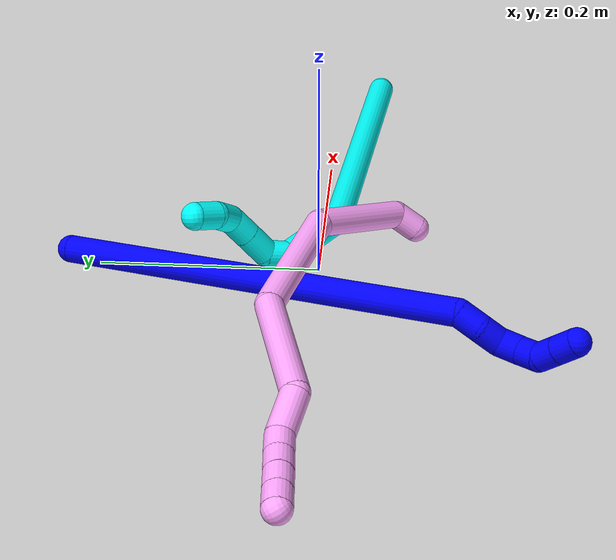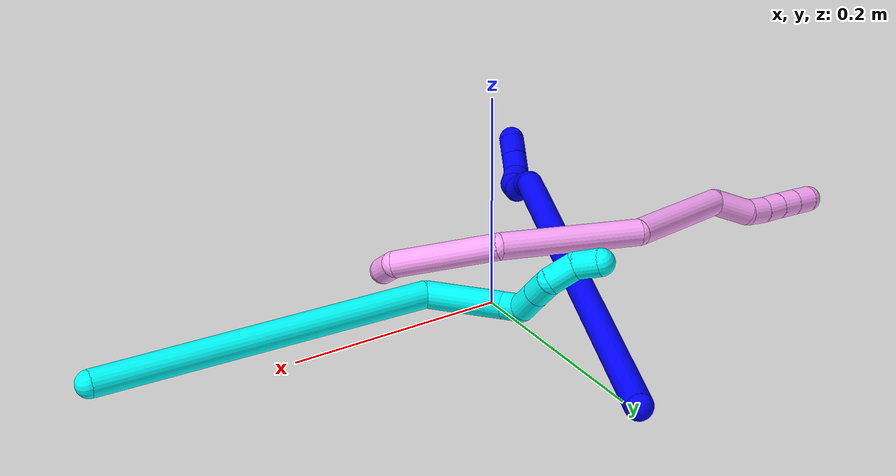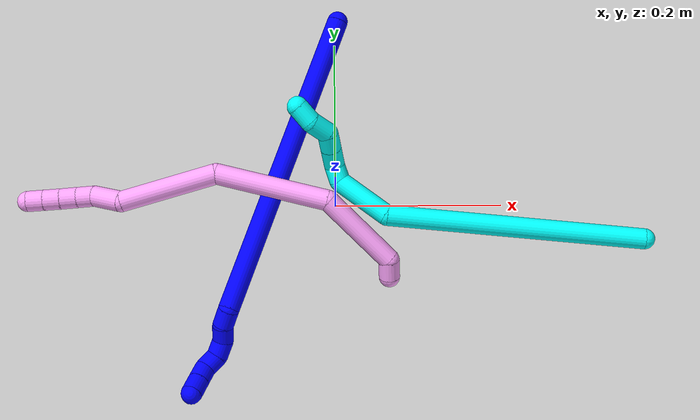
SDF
<sdf version="1.7">
 <world name="default">
  <model name="photoneo_s_sensor">
   <static>1</static>
   <pose>0 0 2 1.57079 1.57079 3.14159</pose>
   <link name="link">
    <inertial><mass>0.1</mass></inertial>
    <sensor name="sensor" type="depth">
     <update_rate>30</update_rate>
     <camera>
      <horizontal_fov>1.22</horizontal_fov>
      <image><width>1920</width><height>1200</height><format>B8G8R8</format></image>
      <clip><near>0.1</near><far>4</far></clip>
      <depth_camera><output>points</output></depth_camera>
     </camera>
     <plugin name="camera_plugin" filename="libgazebo_ros_depth_camera.so">
      <baseline>0.2</baseline>
      <alwaysOn>1</alwaysOn>
      <updateRate>0.0</updateRate>
      <cameraName>camera_ir</cameraName>
      <imageTopicName>/camera/color/image_raw</imageTopicName>
      <cameraInfoTopicName>/camera/color/camera_info</cameraInfoTopicName>
      <depthImageTopicName>/camera/depth/image_raw</depthImageTopicName>
      <depthImageCameraInfoTopicName>/camera/depth/camera_info</depthImageCameraInfoTopicName>
      <pointCloudTopicName>/camera/depth/points</pointCloudTopicName>
      <frameName>fr_optical</frameName>
      <pointCloudCutoff>0.1</pointCloudCutoff>
      <pointCloudCutoffMax>2.0</pointCloudCutoffMax>
      <distortionK1>0</distortionK1>
      <distortionK2>0</distortionK2>
      <distortionK3>0</distortionK3>
      <distortionT1>0</distortionT1>
      <distortionT2>0</distortionT2>
      <CxPrime>0</CxPrime>
      <Cx>0</Cx>
      <Cy>0</Cy>
      <focalLength>0</focalLength>
      <hackBaseline>0</hackBaseline>
     </plugin>
    </sensor>
   </link>
  </model>
  <model name="bin">
   <static>1</static>
   <link name="bottom">
    <collision name="collision-bottom">
     <pose>0 0 -0.01 0 -0 0</pose>
     <geometry><box><size>0.8 0.6 0.02</size></box></geometry>
     <surface>
      <friction><ode><mu>100</mu><mu2>100</mu2></ode></friction>
      <contact><collide_bitmask>65535</collide_bitmask></contact>
     </surface>
    </collision>
   </link>
   <link name="west_wall">
    <collision name="collision-west_wall">
     <pose>-0.41 0 0.1 0 -0 0</pose>
     <geometry><box><size>0.02 0.6 0.2</size></box></geometry>
     <surface>
      <friction><ode><mu>100</mu><mu2>100</mu2></ode></friction>
      <contact><collide_bitmask>65535</collide_bitmask></contact>
     </surface>
    </collision>
   </link>
   <link name="east_wall">
    <collision name="collision-east_wall">
     <pose>0.41 0 0.1 0 -0 0</pose>
     <geometry><box><size>0.02 0.6 0.2</size></box></geometry>
     <surface>
      <friction><ode><mu>100</mu><mu2>100</mu2></ode></friction>
      <contact><collide_bitmask>65535</collide_bitmask></contact>
     </surface>
    </collision>
   </link>
   <link name="south_wall">
    <collision name="collision-south_wall">
     <pose>0 -0.31 0.1 0 -0 0</pose>
     <geometry><box><size>0.8 0.02 0.2</size></box></geometry>
     <surface>
      <friction><ode><mu>100</mu><mu2>100</mu2></ode></friction>
      <contact><collide_bitmask>65535</collide_bitmask></contact>
     </surface>
    </collision>
   </link>
   <link name="north_wall">
    <collision name="collision-north_wall">
     <pose>0 0.31 0.1 0 -0 0</pose>
     <geometry><box><size>0.8 0.02 0.2</size></box></geometry>
     <surface>
      <friction><ode><mu>100</mu><mu2>100</mu2></ode></friction>
      <contact><collide_bitmask>65535</collide_bitmask></contact>
     </surface>
    </collision>
   </link>
  </model>
  <model name="1">
   <static>0</static>
   <link name="1">
    <collision name="collision-cylinder-e_1_1_4">
     <pose>-0.063604 -0.177215 0.011354 1.50682 -0.343937 -0.322988</pose>
     <geometry><cylinder><radius>0.0125</radius><length>0.37725</length></cylinder></geometry>
     <surface>
      <friction><ode><mu>1.16</mu><mu2>1.16</mu2><slip1>0</slip1><slip2>0</slip2></ode></friction>
      <contact><ode><kp>1e+06</kp><kd>1</kd><max_vel>0</max_vel><min_depth>0.001</min_depth></ode></contact>
     </surface>
    </collision>
    <visual name="visual-cylinder-e_1_1_4">
     <pose>-0.063604 -0.177215 0.011354 1.50682 -0.343937 -0.322988</pose>
     <geometry><cylinder><radius>0.0125</radius><length>0.37725</length></cylinder></geometry>
     <material><ambient>0 0 1 1</ambient></material>
    </visual>
    <collision name="collision-cylinder-e_2_4_5">
     <pose>-0.13124 -0.363389 0.017772 2.07433 -0.375602 -0.622423</pose>
     <geometry><cylinder><radius>0.0125</radius><length>0.021989</length></cylinder></geometry>
     <surface>
      <friction><ode><mu>1.16</mu><mu2>1.16</mu2><slip1>0</slip1><slip2>0</slip2></ode></friction>
      <contact><ode><kp>1e+06</kp><kd>1</kd><max_vel>0</max_vel><min_depth>0.001</min_depth></ode></contact>
     </surface>
    </collision>
    <visual name="visual-cylinder-e_2_4_5">
     <pose>-0.13124 -0.363389 0.017772 2.07433 -0.375602 -0.622423</pose>
     <geometry><cylinder><radius>0.0125</radius><length>0.021989</length></cylinder></geometry>
     <material><ambient>0 0 1 1</ambient></material>
    </visual>
    <collision name="collision-cylinder-e_3_5_6">
     <pose>-0.136119 -0.380384 0.006443 2.24277 -0.082175 -0.170057</pose>
     <geometry><cylinder><radius>0.0125</radius><length>0.020608</length></cylinder></geometry>
     <surface>
      <friction><ode><mu>1.16</mu><mu2>1.16</mu2><slip1>0</slip1><slip2>0</slip2></ode></friction>
      <contact><ode><kp>1e+06</kp><kd>1</kd><max_vel>0</max_vel><min_depth>0.001</min_depth></ode></contact>
     </surface>
    </collision>
    <visual name="visual-cylinder-e_3_5_6">
     <pose>-0.136119 -0.380384 0.006443 2.24277 -0.082175 -0.170057</pose>
     <geometry><cylinder><radius>0.0125</radius><length>0.020608</length></cylinder></geometry>
     <material><ambient>0 0 1 1</ambient></material>
    </visual>
    <collision name="collision-cylinder-e_4_6_7">
     <pose>-0.140664 -0.397574 -0.001815 1.77184 -0.377007 -0.458911</pose>
     <geometry><cylinder><radius>0.0125</radius><length>0.020095</length></cylinder></geometry>
     <surface>
      <friction><ode><mu>1.16</mu><mu2>1.16</mu2><slip1>0</slip1><slip2>0</slip2></ode></friction>
      <contact><ode><kp>1e+06</kp><kd>1</kd><max_vel>0</max_vel><min_depth>0.001</min_depth></ode></contact>
     </surface>
    </collision>
    <visual name="visual-cylinder-e_4_6_7">
     <pose>-0.140664 -0.397574 -0.001815 1.77184 -0.377007 -0.458911</pose>
     <geometry><cylinder><radius>0.0125</radius><length>0.020095</length></cylinder></geometry>
     <material><ambient>0 0 1 1</ambient></material>
    </visual>
    <collision name="collision-cylinder-e_5_7_8">
     <pose>-0.151119 -0.413937 -0.002061 1.3499 -0.740662 -0.602538</pose>
     <geometry><cylinder><radius>0.0125</radius><length>0.020025</length></cylinder></geometry>
     <surface>
      <friction><ode><mu>1.16</mu><mu2>1.16</mu2><slip1>0</slip1><slip2>0</slip2></ode></friction>
      <contact><ode><kp>1e+06</kp><kd>1</kd><max_vel>0</max_vel><min_depth>0.001</min_depth></ode></contact>
     </surface>
    </collision>
    <visual name="visual-cylinder-e_5_7_8">
     <pose>-0.151119 -0.413937 -0.002061 1.3499 -0.740662 -0.602538</pose>
     <geometry><cylinder><radius>0.0125</radius><length>0.020025</length></cylinder></geometry>
     <material><ambient>0 0 1 1</ambient></material>
    </visual>
    <collision name="collision-cylinder-e_6_8_9">
     <pose>-0.160692 -0.42861 0.005598 0.890351 -0.285431 -0.136903</pose>
     <geometry><cylinder><radius>0.0125</radius><length>0.020012</length></cylinder></geometry>
     <surface>
      <friction><ode><mu>1.16</mu><mu2>1.16</mu2><slip1>0</slip1><slip2>0</slip2></ode></friction>
      <contact><ode><kp>1e+06</kp><kd>1</kd><max_vel>0</max_vel><min_depth>0.001</min_depth></ode></contact>
     </surface>
    </collision>
    <visual name="visual-cylinder-e_6_8_9">
     <pose>-0.160692 -0.42861 0.005598 0.890351 -0.285431 -0.136903</pose>
     <geometry><cylinder><radius>0.0125</radius><length>0.020012</length></cylinder></geometry>
     <material><ambient>0 0 1 1</ambient></material>
    </visual>
    <collision name="collision-cylinder-e_7_9_2">
     <pose>-0.166262 -0.443554 0.017694 0.89033 -0.278479 -0.133531</pose>
     <geometry><cylinder><radius>0.0125</radius><length>0.020021</length></cylinder></geometry>
     <surface>
      <friction><ode><mu>1.16</mu><mu2>1.16</mu2><slip1>0</slip1><slip2>0</slip2></ode></friction>
      <contact><ode><kp>1e+06</kp><kd>1</kd><max_vel>0</max_vel><min_depth>0.001</min_depth></ode></contact>
     </surface>
    </collision>
    <visual name="visual-cylinder-e_7_9_2">
     <pose>-0.166262 -0.443554 0.017694 0.89033 -0.278479 -0.133531</pose>
     <geometry><cylinder><radius>0.0125</radius><length>0.020021</length></cylinder></geometry>
     <material><ambient>0 0 1 1</ambient></material>
    </visual>
    <collision name="collision-sphere-2">
     <pose>-0.169013 -0.451035 0.02375 0 -0 0</pose>
     <geometry><sphere><radius>0.0125</radius></sphere></geometry>
     <surface>
      <friction><ode><mu>1.16</mu><mu2>1.16</mu2><slip1>0</slip1><slip2>0</slip2></ode></friction>
      <contact><ode><kp>1e+06</kp><kd>1</kd><max_vel>0</max_vel><min_depth>0.001</min_depth></ode></contact>
     </surface>
    </collision>
    <visual name="visual-sphere-2">
     <pose>-0.169013 -0.451035 0.02375 0 -0 0</pose>
     <geometry><sphere><radius>0.0125</radius></sphere></geometry>
     <material><ambient>0 0 1 1</ambient></material>
    </visual>
    <collision name="collision-sphere-9">
     <pose>-0.16351 -0.436073 0.011639 0 -0 0</pose>
     <geometry><sphere><radius>0.0125</radius></sphere></geometry>
     <surface>
      <friction><ode><mu>1.16</mu><mu2>1.16</mu2><slip1>0</slip1><slip2>0</slip2></ode></friction>
      <contact><ode><kp>1e+06</kp><kd>1</kd><max_vel>0</max_vel><min_depth>0.001</min_depth></ode></contact>
     </surface>
    </collision>
    <visual name="visual-sphere-9">
     <pose>-0.16351 -0.436073 0.011639 0 -0 0</pose>
     <geometry><sphere><radius>0.0125</radius></sphere></geometry>
     <material><ambient>0 0 1 1</ambient></material>
    </visual>
    <collision name="collision-sphere-4">
     <pose>-0.127207 -0.35443 0.022707 0 -0 0</pose>
     <geometry><sphere><radius>0.0125</radius></sphere></geometry>
     <surface>
      <friction><ode><mu>1.16</mu><mu2>1.16</mu2><slip1>0</slip1><slip2>0</slip2></ode></friction>
      <contact><ode><kp>1e+06</kp><kd>1</kd><max_vel>0</max_vel><min_depth>0.001</min_depth></ode></contact>
     </surface>
    </collision>
    <visual name="visual-sphere-4">
     <pose>-0.127207 -0.35443 0.022707 0 -0 0</pose>
     <geometry><sphere><radius>0.0125</radius></sphere></geometry>
     <material><ambient>0 0 1 1</ambient></material>
    </visual>
    <collision name="collision-sphere-1">
     <geometry><sphere><radius>0.0125</radius></sphere></geometry>
     <surface>
      <friction><ode><mu>1.16</mu><mu2>1.16</mu2><slip1>0</slip1><slip2>0</slip2></ode></friction>
      <contact><ode><kp>1e+06</kp><kd>1</kd><max_vel>0</max_vel><min_depth>0.001</min_depth></ode></contact>
     </surface>
    </collision>
    <visual name="visual-sphere-1">
     <geometry><sphere><radius>0.0125</radius></sphere></geometry>
     <material><ambient>0 0 1 1</ambient></material>
    </visual>
    <collision name="collision-sphere-8">
     <pose>-0.157875 -0.421147 -0.000442 0 -0 0</pose>
     <geometry><sphere><radius>0.0125</radius></sphere></geometry>
     <surface>
      <friction><ode><mu>1.16</mu><mu2>1.16</mu2><slip1>0</slip1><slip2>0</slip2></ode></friction>
      <contact><ode><kp>1e+06</kp><kd>1</kd><max_vel>0</max_vel><min_depth>0.001</min_depth></ode></contact>
     </surface>
    </collision>
    <visual name="visual-sphere-8">
     <pose>-0.157875 -0.421147 -0.000442 0 -0 0</pose>
     <geometry><sphere><radius>0.0125</radius></sphere></geometry>
     <material><ambient>0 0 1 1</ambient></material>
    </visual>
    <collision name="collision-sphere-5">
     <pose>-0.135274 -0.372347 0.012836 0 -0 0</pose>
     <geometry><sphere><radius>0.0125</radius></sphere></geometry>
     <surface>
      <friction><ode><mu>1.16</mu><mu2>1.16</mu2><slip1>0</slip1><slip2>0</slip2></ode></friction>
      <contact><ode><kp>1e+06</kp><kd>1</kd><max_vel>0</max_vel><min_depth>0.001</min_depth></ode></contact>
     </surface>
    </collision>
    <visual name="visual-sphere-5">
     <pose>-0.135274 -0.372347 0.012836 0 -0 0</pose>
     <geometry><sphere><radius>0.0125</radius></sphere></geometry>
     <material><ambient>0 0 1 1</ambient></material>
    </visual>
    <collision name="collision-sphere-6">
     <pose>-0.136965 -0.38842 5.1e-05 0 -0 0</pose>
     <geometry><sphere><radius>0.0125</radius></sphere></geometry>
     <surface>
      <friction><ode><mu>1.16</mu><mu2>1.16</mu2><slip1>0</slip1><slip2>0</slip2></ode></friction>
      <contact><ode><kp>1e+06</kp><kd>1</kd><max_vel>0</max_vel><min_depth>0.001</min_depth></ode></contact>
     </surface>
    </collision>
    <visual name="visual-sphere-6">
     <pose>-0.136965 -0.38842 5.1e-05 0 -0 0</pose>
     <geometry><sphere><radius>0.0125</radius></sphere></geometry>
     <material><ambient>0 0 1 1</ambient></material>
    </visual>
    <collision name="collision-sphere-7">
     <pose>-0.144363 -0.406728 -0.00368 0 -0 0</pose>
     <geometry><sphere><radius>0.0125</radius></sphere></geometry>
     <surface>
      <friction><ode><mu>1.16</mu><mu2>1.16</mu2><slip1>0</slip1><slip2>0</slip2></ode></friction>
      <contact><ode><kp>1e+06</kp><kd>1</kd><max_vel>0</max_vel><min_depth>0.001</min_depth></ode></contact>
     </surface>
    </collision>
    <visual name="visual-sphere-7">
     <pose>-0.144363 -0.406728 -0.00368 0 -0 0</pose>
     <geometry><sphere><radius>0.0125</radius></sphere></geometry>
     <material><ambient>0 0 1 1</ambient></material>
    </visual>
    <inertial>
     <pose>-0.084165 -0.23284 0.01039 0 -0 0</pose>
     <mass>0.5</mass>
     <inertia>
      <ixx>0.002658</ixx>
      <ixy>0</ixy>
      <ixz>0</ixz>
      <iyy>-0.000626</iyy>
      <iyz>0</iyz>
      <izz>0.005743</izz>
     </inertia>
    </inertial>
   </link>
   <pose>0.004148 0.227844 0.011486 -0.033946 -0.06999 0.000722</pose>
  </model>
  <model name="3">
   <static>0</static>
   <link name="3">
    <collision name="collision-cylinder-e_1_1_4">
     <pose>-0.145979 -0.026583 -0.042657 2.58431 -1.2392 -2.37874</pose>
     <geometry><cylinder><radius>0.0125</radius><length>0.308779</length></cylinder></geometry>
     <surface>
      <friction><ode><mu>1.16</mu><mu2>1.16</mu2><slip1>0</slip1><slip2>0</slip2></ode></friction>
      <contact><ode><kp>1e+06</kp><kd>1</kd><max_vel>0</max_vel><min_depth>0.001</min_depth></ode></contact>
     </surface>
    </collision>
    <visual name="visual-cylinder-e_1_1_4">
     <pose>-0.145979 -0.026583 -0.042657 2.58431 -1.2392 -2.37874</pose>
     <geometry><cylinder><radius>0.0125</radius><length>0.308779</length></cylinder></geometry>
     <material><ambient>0.003922 1 0.996078 1</ambient></material>
    </visual>
    <collision name="collision-cylinder-e_2_4_5">
     <pose>-0.322774 -0.039385 -0.095449 -2.20491 -1.06407 1.72175</pose>
     <geometry><cylinder><radius>0.0125</radius><length>0.070491</length></cylinder></geometry>
     <surface>
      <friction><ode><mu>1.16</mu><mu2>1.16</mu2><slip1>0</slip1><slip2>0</slip2></ode></friction>
      <contact><ode><kp>1e+06</kp><kd>1</kd><max_vel>0</max_vel><min_depth>0.001</min_depth></ode></contact>
     </surface>
    </collision>
    <visual name="visual-cylinder-e_2_4_5">
     <pose>-0.322774 -0.039385 -0.095449 -2.20491 -1.06407 1.72175</pose>
     <geometry><cylinder><radius>0.0125</radius><length>0.070491</length></cylinder></geometry>
     <material><ambient>0.003922 1 0.996078 1</ambient></material>
    </visual>
    <collision name="collision-cylinder-e_3_5_6">
     <pose>-0.360005 -0.017879 -0.103551 -1.31365 -0.67647 0.529683</pose>
     <geometry><cylinder><radius>0.0125</radius><length>0.02049</length></cylinder></geometry>
     <surface>
      <friction><ode><mu>1.16</mu><mu2>1.16</mu2><slip1>0</slip1><slip2>0</slip2></ode></friction>
      <contact><ode><kp>1e+06</kp><kd>1</kd><max_vel>0</max_vel><min_depth>0.001</min_depth></ode></contact>
     </surface>
    </collision>
    <visual name="visual-cylinder-e_3_5_6">
     <pose>-0.360005 -0.017879 -0.103551 -1.31365 -0.67647 0.529683</pose>
     <geometry><cylinder><radius>0.0125</radius><length>0.02049</length></cylinder></geometry>
     <material><ambient>0.003922 1 0.996078 1</ambient></material>
    </visual>
    <collision name="collision-cylinder-e_4_6_7">
     <pose>-0.373763 -0.004726 -0.091274 -0.487103 -0.564692 0.14392</pose>
     <geometry><cylinder><radius>0.0125</radius><length>0.02745</length></cylinder></geometry>
     <surface>
      <friction><ode><mu>1.16</mu><mu2>1.16</mu2><slip1>0</slip1><slip2>0</slip2></ode></friction>
      <contact><ode><kp>1e+06</kp><kd>1</kd><max_vel>0</max_vel><min_depth>0.001</min_depth></ode></contact>
     </surface>
    </collision>
    <visual name="visual-cylinder-e_4_6_7">
     <pose>-0.373763 -0.004726 -0.091274 -0.487103 -0.564692 0.14392</pose>
     <geometry><cylinder><radius>0.0125</radius><length>0.02745</length></cylinder></geometry>
     <material><ambient>0.003922 1 0.996078 1</ambient></material>
    </visual>
    <collision name="collision-cylinder-e_5_7_8">
     <pose>-0.387314 0.005401 -0.072503 -0.503904 -0.567521 0.149863</pose>
     <geometry><cylinder><radius>0.0125</radius><length>0.023091</length></cylinder></geometry>
     <surface>
      <friction><ode><mu>1.16</mu><mu2>1.16</mu2><slip1>0</slip1><slip2>0</slip2></ode></friction>
      <contact><ode><kp>1e+06</kp><kd>1</kd><max_vel>0</max_vel><min_depth>0.001</min_depth></ode></contact>
     </surface>
    </collision>
    <visual name="visual-cylinder-e_5_7_8">
     <pose>-0.387314 0.005401 -0.072503 -0.503904 -0.567521 0.149863</pose>
     <geometry><cylinder><radius>0.0125</radius><length>0.023091</length></cylinder></geometry>
     <material><ambient>0.003922 1 0.996078 1</ambient></material>
    </visual>
    <collision name="collision-cylinder-e_6_8_9">
     <pose>-0.405906 0.011002 -0.059776 -0.211076 -1.23687 0.150467</pose>
     <geometry><cylinder><radius>0.0125</radius><length>0.02622</length></cylinder></geometry>
     <surface>
      <friction><ode><mu>1.16</mu><mu2>1.16</mu2><slip1>0</slip1><slip2>0</slip2></ode></friction>
      <contact><ode><kp>1e+06</kp><kd>1</kd><max_vel>0</max_vel><min_depth>0.001</min_depth></ode></contact>
     </surface>
    </collision>
    <visual name="visual-cylinder-e_6_8_9">
     <pose>-0.405906 0.011002 -0.059776 -0.211076 -1.23687 0.150467</pose>
     <geometry><cylinder><radius>0.0125</radius><length>0.02622</length></cylinder></geometry>
     <material><ambient>0.003922 1 0.996078 1</ambient></material>
    </visual>
    <collision name="collision-cylinder-e_7_9_2">
     <pose>-0.428608 0.017262 -0.053937 -1.27414 -1.07316 0.829256</pose>
     <geometry><cylinder><radius>0.0125</radius><length>0.02348</length></cylinder></geometry>
     <surface>
      <friction><ode><mu>1.16</mu><mu2>1.16</mu2><slip1>0</slip1><slip2>0</slip2></ode></friction>
      <contact><ode><kp>1e+06</kp><kd>1</kd><max_vel>0</max_vel><min_depth>0.001</min_depth></ode></contact>
     </surface>
    </collision>
    <visual name="visual-cylinder-e_7_9_2">
     <pose>-0.428608 0.017262 -0.053937 -1.27414 -1.07316 0.829256</pose>
     <geometry><cylinder><radius>0.0125</radius><length>0.02348</length></cylinder></geometry>
     <material><ambient>0.003922 1 0.996078 1</ambient></material>
    </visual>
    <collision name="collision-sphere-2">
     <pose>-0.438924 0.022621 -0.052299 0 -0 0</pose>
     <geometry><sphere><radius>0.0125</radius></sphere></geometry>
     <surface>
      <friction><ode><mu>1.16</mu><mu2>1.16</mu2><slip1>0</slip1><slip2>0</slip2></ode></friction>
      <contact><ode><kp>1e+06</kp><kd>1</kd><max_vel>0</max_vel><min_depth>0.001</min_depth></ode></contact>
     </surface>
    </collision>
    <visual name="visual-sphere-2">
     <pose>-0.438924 0.022621 -0.052299 0 -0 0</pose>
     <geometry><sphere><radius>0.0125</radius></sphere></geometry>
     <material><ambient>0.003922 1 0.996078 1</ambient></material>
    </visual>
    <collision name="collision-sphere-9">
     <pose>-0.418292 0.011903 -0.055575 0 -0 0</pose>
     <geometry><sphere><radius>0.0125</radius></sphere></geometry>
     <surface>
      <friction><ode><mu>1.16</mu><mu2>1.16</mu2><slip1>0</slip1><slip2>0</slip2></ode></friction>
      <contact><ode><kp>1e+06</kp><kd>1</kd><max_vel>0</max_vel><min_depth>0.001</min_depth></ode></contact>
     </surface>
    </collision>
    <visual name="visual-sphere-9">
     <pose>-0.418292 0.011903 -0.055575 0 -0 0</pose>
     <geometry><sphere><radius>0.0125</radius></sphere></geometry>
     <material><ambient>0.003922 1 0.996078 1</ambient></material>
    </visual>
    <collision name="collision-sphere-4">
     <pose>-0.291958 -0.053165 -0.085315 0 -0 0</pose>
     <geometry><sphere><radius>0.0125</radius></sphere></geometry>
     <surface>
      <friction><ode><mu>1.16</mu><mu2>1.16</mu2><slip1>0</slip1><slip2>0</slip2></ode></friction>
      <contact><ode><kp>1e+06</kp><kd>1</kd><max_vel>0</max_vel><min_depth>0.001</min_depth></ode></contact>
     </surface>
    </collision>
    <visual name="visual-sphere-4">
     <pose>-0.291958 -0.053165 -0.085315 0 -0 0</pose>
     <geometry><sphere><radius>0.0125</radius></sphere></geometry>
     <material><ambient>0.003922 1 0.996078 1</ambient></material>
    </visual>
    <collision name="collision-sphere-1">
     <geometry><sphere><radius>0.0125</radius></sphere></geometry>
     <surface>
      <friction><ode><mu>1.16</mu><mu2>1.16</mu2><slip1>0</slip1><slip2>0</slip2></ode></friction>
      <contact><ode><kp>1e+06</kp><kd>1</kd><max_vel>0</max_vel><min_depth>0.001</min_depth></ode></contact>
     </surface>
    </collision>
    <visual name="visual-sphere-1">
     <geometry><sphere><radius>0.0125</radius></sphere></geometry>
     <material><ambient>0.003922 1 0.996078 1</ambient></material>
    </visual>
    <collision name="collision-sphere-8">
     <pose>-0.393521 0.010102 -0.063978 0 -0 0</pose>
     <geometry><sphere><radius>0.0125</radius></sphere></geometry>
     <surface>
      <friction><ode><mu>1.16</mu><mu2>1.16</mu2><slip1>0</slip1><slip2>0</slip2></ode></friction>
      <contact><ode><kp>1e+06</kp><kd>1</kd><max_vel>0</max_vel><min_depth>0.001</min_depth></ode></contact>
     </surface>
    </collision>
    <visual name="visual-sphere-8">
     <pose>-0.393521 0.010102 -0.063978 0 -0 0</pose>
     <geometry><sphere><radius>0.0125</radius></sphere></geometry>
     <material><ambient>0.003922 1 0.996078 1</ambient></material>
    </visual>
    <collision name="collision-sphere-5">
     <pose>-0.353591 -0.025605 -0.105583 0 -0 0</pose>
     <geometry><sphere><radius>0.0125</radius></sphere></geometry>
     <surface>
      <friction><ode><mu>1.16</mu><mu2>1.16</mu2><slip1>0</slip1><slip2>0</slip2></ode></friction>
      <contact><ode><kp>1e+06</kp><kd>1</kd><max_vel>0</max_vel><min_depth>0.001</min_depth></ode></contact>
     </surface>
    </collision>
    <visual name="visual-sphere-5">
     <pose>-0.353591 -0.025605 -0.105583 0 -0 0</pose>
     <geometry><sphere><radius>0.0125</radius></sphere></geometry>
     <material><ambient>0.003922 1 0.996078 1</ambient></material>
    </visual>
    <collision name="collision-sphere-6">
     <pose>-0.366419 -0.010153 -0.10152 0 -0 0</pose>
     <geometry><sphere><radius>0.0125</radius></sphere></geometry>
     <surface>
      <friction><ode><mu>1.16</mu><mu2>1.16</mu2><slip1>0</slip1><slip2>0</slip2></ode></friction>
      <contact><ode><kp>1e+06</kp><kd>1</kd><max_vel>0</max_vel><min_depth>0.001</min_depth></ode></contact>
     </surface>
    </collision>
    <visual name="visual-sphere-6">
     <pose>-0.366419 -0.010153 -0.10152 0 -0 0</pose>
     <geometry><sphere><radius>0.0125</radius></sphere></geometry>
     <material><ambient>0.003922 1 0.996078 1</ambient></material>
    </visual>
    <collision name="collision-sphere-7">
     <pose>-0.381108 0.000701 -0.081029 0 -0 0</pose>
     <geometry><sphere><radius>0.0125</radius></sphere></geometry>
     <surface>
      <friction><ode><mu>1.16</mu><mu2>1.16</mu2><slip1>0</slip1><slip2>0</slip2></ode></friction>
      <contact><ode><kp>1e+06</kp><kd>1</kd><max_vel>0</max_vel><min_depth>0.001</min_depth></ode></contact>
     </surface>
    </collision>
    <visual name="visual-sphere-7">
     <pose>-0.381108 0.000701 -0.081029 0 -0 0</pose>
     <geometry><sphere><radius>0.0125</radius></sphere></geometry>
     <material><ambient>0.003922 1 0.996078 1</ambient></material>
    </visual>
    <inertial>
     <pose>-0.230228 -0.021324 -0.05807 0 -0 0</pose>
     <mass>0.5</mass>
     <inertia>
      <ixx>-0.001148</ixx>
      <ixy>0</ixy>
      <ixz>0</ixz>
      <iyy>0.001863</iyy>
      <iyz>0</iyz>
      <izz>0.00277</izz>
     </inertia>
    </inertial>
   </link>
   <pose>0.368591 -0.04342 0.012256 -0.201568 0.271004 -0.321106</pose>
  </model>
  <model name="4">
   <static>0</static>
   <link name="4">
    <collision name="collision-cylinder-e_1_1_4">
     <pose>0.002291 0.010819 -0.004676 -1.9788 0.191964 -0.290938</pose>
     <geometry><cylinder><radius>0.0125</radius><length>0.024014</length></cylinder></geometry>
     <surface>
      <friction><ode><mu>1.16</mu><mu2>1.16</mu2><slip1>0</slip1><slip2>0</slip2></ode></friction>
      <contact><ode><kp>1e+06</kp><kd>1</kd><max_vel>0</max_vel><min_depth>0.001</min_depth></ode></contact>
     </surface>
    </collision>
    <visual name="visual-cylinder-e_1_1_4">
     <pose>0.002291 0.010819 -0.004676 -1.9788 0.191964 -0.290938</pose>
     <geometry><cylinder><radius>0.0125</radius><length>0.024014</length></cylinder></geometry>
     <material><ambient>1 0.65098 0.996078 1</ambient></material>
    </visual>
    <collision name="collision-cylinder-e_2_4_5">
     <pose>-0.0207 0.054277 -0.038685 -2.30287 -0.522672 1.08074</pose>
     <geometry><cylinder><radius>0.0125</radius><length>0.10129</length></cylinder></geometry>
     <surface>
      <friction><ode><mu>1.16</mu><mu2>1.16</mu2><slip1>0</slip1><slip2>0</slip2></ode></friction>
      <contact><ode><kp>1e+06</kp><kd>1</kd><max_vel>0</max_vel><min_depth>0.001</min_depth></ode></contact>
     </surface>
    </collision>
    <visual name="visual-cylinder-e_2_4_5">
     <pose>-0.0207 0.054277 -0.038685 -2.30287 -0.522672 1.08074</pose>
     <geometry><cylinder><radius>0.0125</radius><length>0.10129</length></cylinder></geometry>
     <material><ambient>1 0.65098 0.996078 1</ambient></material>
    </visual>
    <collision name="collision-cylinder-e_3_5_6">
     <pose>-0.104957 0.101682 -0.098017 -2.68424 -1.05503 2.38143</pose>
     <geometry><cylinder><radius>0.0125</radius><length>0.135589</length></cylinder></geometry>
     <surface>
      <friction><ode><mu>1.16</mu><mu2>1.16</mu2><slip1>0</slip1><slip2>0</slip2></ode></friction>
      <contact><ode><kp>1e+06</kp><kd>1</kd><max_vel>0</max_vel><min_depth>0.001</min_depth></ode></contact>
     </surface>
    </collision>
    <visual name="visual-cylinder-e_3_5_6">
     <pose>-0.104957 0.101682 -0.098017 -2.68424 -1.05503 2.38143</pose>
     <geometry><cylinder><radius>0.0125</radius><length>0.135589</length></cylinder></geometry>
     <material><ambient>1 0.65098 0.996078 1</ambient></material>
    </visual>
    <collision name="collision-cylinder-e_4_6_7">
     <pose>-0.222423 0.113241 -0.129726 2.06054 -1.50878 -2.005</pose>
     <geometry><cylinder><radius>0.0125</radius><length>0.117206</length></cylinder></geometry>
     <surface>
      <friction><ode><mu>1.16</mu><mu2>1.16</mu2><slip1>0</slip1><slip2>0</slip2></ode></friction>
      <contact><ode><kp>1e+06</kp><kd>1</kd><max_vel>0</max_vel><min_depth>0.001</min_depth></ode></contact>
     </surface>
    </collision>
    <visual name="visual-cylinder-e_4_6_7">
     <pose>-0.222423 0.113241 -0.129726 2.06054 -1.50878 -2.005</pose>
     <geometry><cylinder><radius>0.0125</radius><length>0.117206</length></cylinder></geometry>
     <material><ambient>1 0.65098 0.996078 1</ambient></material>
    </visual>
    <collision name="collision-cylinder-e_5_7_8">
     <pose>-0.296689 0.107677 -0.143067 2.9415 -0.925778 -2.74459</pose>
     <geometry><cylinder><radius>0.0125</radius><length>0.039486</length></cylinder></geometry>
     <surface>
      <friction><ode><mu>1.16</mu><mu2>1.16</mu2><slip1>0</slip1><slip2>0</slip2></ode></friction>
      <contact><ode><kp>1e+06</kp><kd>1</kd><max_vel>0</max_vel><min_depth>0.001</min_depth></ode></contact>
     </surface>
    </collision>
    <visual name="visual-cylinder-e_5_7_8">
     <pose>-0.296689 0.107677 -0.143067 2.9415 -0.925778 -2.74459</pose>
     <geometry><cylinder><radius>0.0125</radius><length>0.039486</length></cylinder></geometry>
     <material><ambient>1 0.65098 0.996078 1</ambient></material>
    </visual>
    <collision name="collision-cylinder-e_6_8_9">
     <pose>-0.322554 0.10524 -0.157266 3.11142 -1.32165 -3.10278</pose>
     <geometry><cylinder><radius>0.0125</radius><length>0.020821</length></cylinder></geometry>
     <surface>
      <friction><ode><mu>1.16</mu><mu2>1.16</mu2><slip1>0</slip1><slip2>0</slip2></ode></friction>
      <contact><ode><kp>1e+06</kp><kd>1</kd><max_vel>0</max_vel><min_depth>0.001</min_depth></ode></contact>
     </surface>
    </collision>
    <visual name="visual-cylinder-e_6_8_9">
     <pose>-0.322554 0.10524 -0.157266 3.11142 -1.32165 -3.10278</pose>
     <geometry><cylinder><radius>0.0125</radius><length>0.020821</length></cylinder></geometry>
     <material><ambient>1 0.65098 0.996078 1</ambient></material>
    </visual>
    <collision name="collision-cylinder-e_7_9_10">
     <pose>-0.342821 0.10579 -0.161733 -2.82298 -1.37655 2.75574</pose>
     <geometry><cylinder><radius>0.0125</radius><length>0.020745</length></cylinder></geometry>
     <surface>
      <friction><ode><mu>1.16</mu><mu2>1.16</mu2><slip1>0</slip1><slip2>0</slip2></ode></friction>
      <contact><ode><kp>1e+06</kp><kd>1</kd><max_vel>0</max_vel><min_depth>0.001</min_depth></ode></contact>
     </surface>
    </collision>
    <visual name="visual-cylinder-e_7_9_10">
     <pose>-0.342821 0.10579 -0.161733 -2.82298 -1.37655 2.75574</pose>
     <geometry><cylinder><radius>0.0125</radius><length>0.020745</length></cylinder></geometry>
     <material><ambient>1 0.65098 0.996078 1</ambient></material>
    </visual>
    <collision name="collision-cylinder-e_8_10_11">
     <pose>-0.362904 0.106949 -0.165766 -2.89722 -1.35256 2.83791</pose>
     <geometry><cylinder><radius>0.0125</radius><length>0.020293</length></cylinder></geometry>
     <surface>
      <friction><ode><mu>1.16</mu><mu2>1.16</mu2><slip1>0</slip1><slip2>0</slip2></ode></friction>
      <contact><ode><kp>1e+06</kp><kd>1</kd><max_vel>0</max_vel><min_depth>0.001</min_depth></ode></contact>
     </surface>
    </collision>
    <visual name="visual-cylinder-e_8_10_11">
     <pose>-0.362904 0.106949 -0.165766 -2.89722 -1.35256 2.83791</pose>
     <geometry><cylinder><radius>0.0125</radius><length>0.020293</length></cylinder></geometry>
     <material><ambient>1 0.65098 0.996078 1</ambient></material>
    </visual>
    <collision name="collision-cylinder-e_9_11_2">
     <pose>-0.382846 0.108018 -0.170054 -2.89704 -1.35284 2.83779</pose>
     <geometry><cylinder><radius>0.0125</radius><length>0.020558</length></cylinder></geometry>
     <surface>
      <friction><ode><mu>1.16</mu><mu2>1.16</mu2><slip1>0</slip1><slip2>0</slip2></ode></friction>
      <contact><ode><kp>1e+06</kp><kd>1</kd><max_vel>0</max_vel><min_depth>0.001</min_depth></ode></contact>
     </surface>
    </collision>
    <visual name="visual-cylinder-e_9_11_2">
     <pose>-0.382846 0.108018 -0.170054 -2.89704 -1.35284 2.83779</pose>
     <geometry><cylinder><radius>0.0125</radius><length>0.020558</length></cylinder></geometry>
     <material><ambient>1 0.65098 0.996078 1</ambient></material>
    </visual>
    <collision name="collision-sphere-2">
     <pose>-0.392881 0.108556 -0.17221 0 -0 0</pose>
     <geometry><sphere><radius>0.0125</radius></sphere></geometry>
     <surface>
      <friction><ode><mu>1.16</mu><mu2>1.16</mu2><slip1>0</slip1><slip2>0</slip2></ode></friction>
      <contact><ode><kp>1e+06</kp><kd>1</kd><max_vel>0</max_vel><min_depth>0.001</min_depth></ode></contact>
     </surface>
    </collision>
    <visual name="visual-sphere-2">
     <pose>-0.392881 0.108556 -0.17221 0 -0 0</pose>
     <geometry><sphere><radius>0.0125</radius></sphere></geometry>
     <material><ambient>1 0.65098 0.996078 1</ambient></material>
    </visual>
    <collision name="collision-sphere-11">
     <pose>-0.37281 0.10748 -0.167897 0 -0 0</pose>
     <geometry><sphere><radius>0.0125</radius></sphere></geometry>
     <surface>
      <friction><ode><mu>1.16</mu><mu2>1.16</mu2><slip1>0</slip1><slip2>0</slip2></ode></friction>
      <contact><ode><kp>1e+06</kp><kd>1</kd><max_vel>0</max_vel><min_depth>0.001</min_depth></ode></contact>
     </surface>
    </collision>
    <visual name="visual-sphere-11">
     <pose>-0.37281 0.10748 -0.167897 0 -0 0</pose>
     <geometry><sphere><radius>0.0125</radius></sphere></geometry>
     <material><ambient>1 0.65098 0.996078 1</ambient></material>
    </visual>
    <collision name="collision-sphere-10">
     <pose>-0.352998 0.106417 -0.163634 0 -0 0</pose>
     <geometry><sphere><radius>0.0125</radius></sphere></geometry>
     <surface>
      <friction><ode><mu>1.16</mu><mu2>1.16</mu2><slip1>0</slip1><slip2>0</slip2></ode></friction>
      <contact><ode><kp>1e+06</kp><kd>1</kd><max_vel>0</max_vel><min_depth>0.001</min_depth></ode></contact>
     </surface>
    </collision>
    <visual name="visual-sphere-10">
     <pose>-0.352998 0.106417 -0.163634 0 -0 0</pose>
     <geometry><sphere><radius>0.0125</radius></sphere></geometry>
     <material><ambient>1 0.65098 0.996078 1</ambient></material>
    </visual>
    <collision name="collision-sphere-9">
     <pose>-0.332643 0.105163 -0.159831 0 -0 0</pose>
     <geometry><sphere><radius>0.0125</radius></sphere></geometry>
     <surface>
      <friction><ode><mu>1.16</mu><mu2>1.16</mu2><slip1>0</slip1><slip2>0</slip2></ode></friction>
      <contact><ode><kp>1e+06</kp><kd>1</kd><max_vel>0</max_vel><min_depth>0.001</min_depth></ode></contact>
     </surface>
    </collision>
    <visual name="visual-sphere-9">
     <pose>-0.332643 0.105163 -0.159831 0 -0 0</pose>
     <geometry><sphere><radius>0.0125</radius></sphere></geometry>
     <material><ambient>1 0.65098 0.996078 1</ambient></material>
    </visual>
    <collision name="collision-sphere-4">
     <pose>0.004581 0.021638 -0.009353 0 -0 0</pose>
     <geometry><sphere><radius>0.0125</radius></sphere></geometry>
     <surface>
      <friction><ode><mu>1.16</mu><mu2>1.16</mu2><slip1>0</slip1><slip2>0</slip2></ode></friction>
      <contact><ode><kp>1e+06</kp><kd>1</kd><max_vel>0</max_vel><min_depth>0.001</min_depth></ode></contact>
     </surface>
    </collision>
    <visual name="visual-sphere-4">
     <pose>0.004581 0.021638 -0.009353 0 -0 0</pose>
     <geometry><sphere><radius>0.0125</radius></sphere></geometry>
     <material><ambient>1 0.65098 0.996078 1</ambient></material>
    </visual>
    <collision name="collision-sphere-1">
     <geometry><sphere><radius>0.0125</radius></sphere></geometry>
     <surface>
      <friction><ode><mu>1.16</mu><mu2>1.16</mu2><slip1>0</slip1><slip2>0</slip2></ode></friction>
      <contact><ode><kp>1e+06</kp><kd>1</kd><max_vel>0</max_vel><min_depth>0.001</min_depth></ode></contact>
     </surface>
    </collision>
    <visual name="visual-sphere-1">
     <geometry><sphere><radius>0.0125</radius></sphere></geometry>
     <material><ambient>1 0.65098 0.996078 1</ambient></material>
    </visual>
    <collision name="collision-sphere-8">
     <pose>-0.312466 0.105318 -0.1547 0 -0 0</pose>
     <geometry><sphere><radius>0.0125</radius></sphere></geometry>
     <surface>
      <friction><ode><mu>1.16</mu><mu2>1.16</mu2><slip1>0</slip1><slip2>0</slip2></ode></friction>
      <contact><ode><kp>1e+06</kp><kd>1</kd><max_vel>0</max_vel><min_depth>0.001</min_depth></ode></contact>
     </surface>
    </collision>
    <visual name="visual-sphere-8">
     <pose>-0.312466 0.105318 -0.1547 0 -0 0</pose>
     <geometry><sphere><radius>0.0125</radius></sphere></geometry>
     <material><ambient>1 0.65098 0.996078 1</ambient></material>
    </visual>
    <collision name="collision-sphere-5">
     <pose>-0.045982 0.086917 -0.068018 0 -0 0</pose>
     <geometry><sphere><radius>0.0125</radius></sphere></geometry>
     <surface>
      <friction><ode><mu>1.16</mu><mu2>1.16</mu2><slip1>0</slip1><slip2>0</slip2></ode></friction>
      <contact><ode><kp>1e+06</kp><kd>1</kd><max_vel>0</max_vel><min_depth>0.001</min_depth></ode></contact>
     </surface>
    </collision>
    <visual name="visual-sphere-5">
     <pose>-0.045982 0.086917 -0.068018 0 -0 0</pose>
     <geometry><sphere><radius>0.0125</radius></sphere></geometry>
     <material><ambient>1 0.65098 0.996078 1</ambient></material>
    </visual>
    <collision name="collision-sphere-6">
     <pose>-0.163933 0.116446 -0.128017 0 -0 0</pose>
     <geometry><sphere><radius>0.0125</radius></sphere></geometry>
     <surface>
      <friction><ode><mu>1.16</mu><mu2>1.16</mu2><slip1>0</slip1><slip2>0</slip2></ode></friction>
      <contact><ode><kp>1e+06</kp><kd>1</kd><max_vel>0</max_vel><min_depth>0.001</min_depth></ode></contact>
     </surface>
    </collision>
    <visual name="visual-sphere-6">
     <pose>-0.163933 0.116446 -0.128017 0 -0 0</pose>
     <geometry><sphere><radius>0.0125</radius></sphere></geometry>
     <material><ambient>1 0.65098 0.996078 1</ambient></material>
    </visual>
    <collision name="collision-sphere-7">
     <pose>-0.280913 0.110036 -0.131434 0 -0 0</pose>
     <geometry><sphere><radius>0.0125</radius></sphere></geometry>
     <surface>
      <friction><ode><mu>1.16</mu><mu2>1.16</mu2><slip1>0</slip1><slip2>0</slip2></ode></friction>
      <contact><ode><kp>1e+06</kp><kd>1</kd><max_vel>0</max_vel><min_depth>0.001</min_depth></ode></contact>
     </surface>
    </collision>
    <visual name="visual-sphere-7">
     <pose>-0.280913 0.110036 -0.131434 0 -0 0</pose>
     <geometry><sphere><radius>0.0125</radius></sphere></geometry>
     <material><ambient>1 0.65098 0.996078 1</ambient></material>
    </visual>
    <inertial>
     <pose>-0.166239 0.091691 -0.103328 0 -0 0</pose>
     <mass>0.5</mass>
     <inertia>
      <ixx>5.5e-05</ixx>
      <ixy>0</ixy>
      <ixz>0</ixz>
      <iyy>0.000487</iyy>
      <iyz>0</iyz>
      <izz>0.000268</izz>
     </inertia>
    </inertial>
   </link>
   <pose>0.063556 -0.086547 0.012164 1.072 -0.033869 0.263993</pose>
  </model>
 </world>
</sdf>
